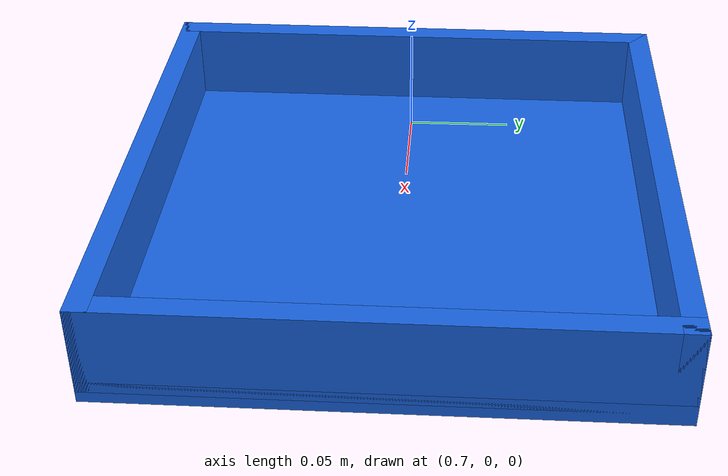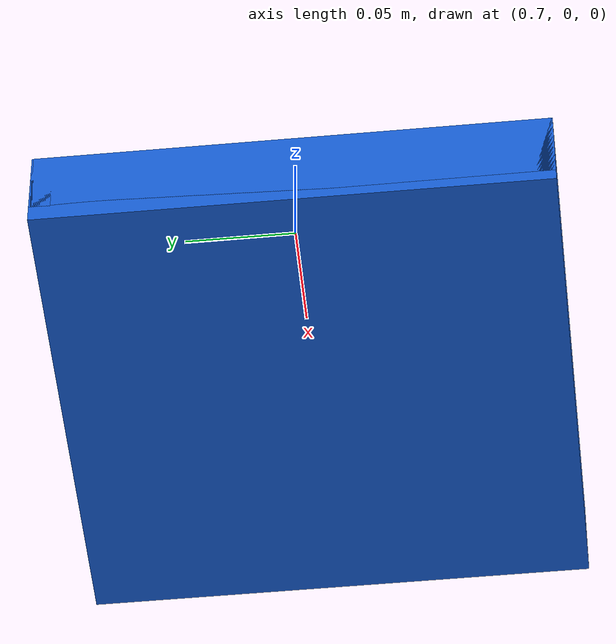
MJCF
<mujoco>
  <asset>
    <material name="tray_blue" rgba="0.1 0.4 0.9 1"/>
  </asset>

  <worldbody>
    <!-- Target tray / platform at a fixed location, ~0.3 m from the cube region. -->
    <body name="tray" pos="0.8 0 0.005">
      <!-- Tray floor: 20 cm x 20 cm, 1 cm thick. -->
      <geom name="tray_floor" type="box" size="0.12 0.12 0.005" pos="0 0 0" material="tray_blue" friction="0.8 0.02 0.01"/>
      <!-- Tray walls to keep the cube inside. -->
      <geom name="tray_wall_n" type="box" size="0.12 0.005 0.02" pos="0 0.115 0.02" material="tray_blue" group="2"/>
      <geom name="tray_wall_s" type="box" size="0.12 0.005 0.02" pos="0 -0.115 0.02" material="tray_blue" group="2"/>
      <geom name="tray_wall_e" type="box" size="0.005 0.12 0.02" pos="0.115 0 0.02" material="tray_blue" group="2"/>
      <geom name="tray_wall_w" type="box" size="0.005 0.12 0.02" pos="-0.115 0 0.02" material="tray_blue" group="2"/>
    </body>
  </worldbody>
</mujoco>
